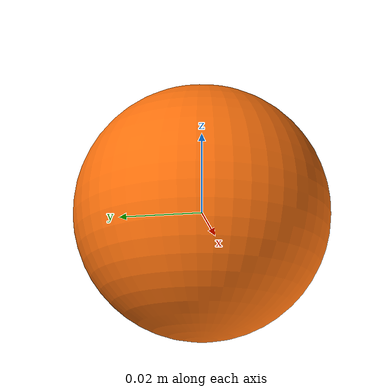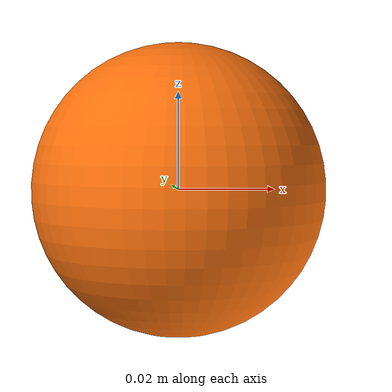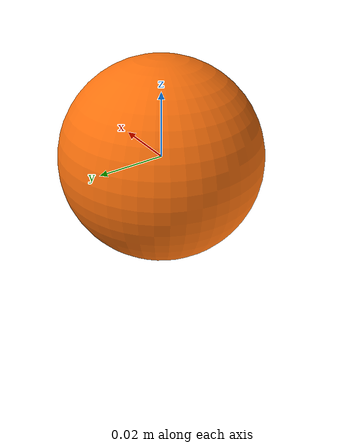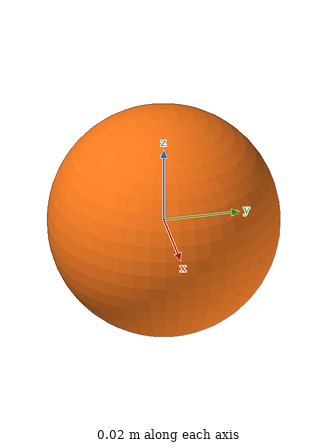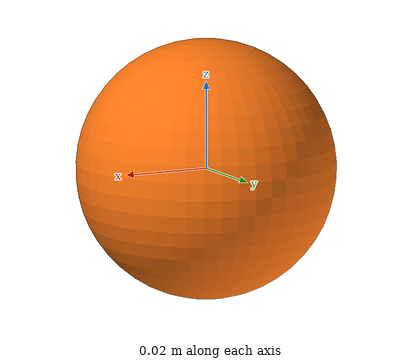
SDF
<sdf version='1.9'>
  <model name='payload_marker'>
    <link name='payload_link'>
      <inertial>
        <mass>0.001</mass>
        <inertia><ixx>0.0001</ixx><ixy>0</ixy><ixz>0</ixz><iyy>0.0001</iyy><iyz>0</iyz><izz>0.0001</izz></inertia>
      </inertial>
      <collision name='payload_collision'>
        <pose>-0.6538 1.2814 -0.8547 0 0 0</pose>
        <geometry>
          <mesh>
            <uri>model://marker/meshes/base_link.STL</uri>
            <scale>1 1 1</scale>
          </mesh>
        </geometry>
      </collision>
      <visual name='payload_visual'>
        <pose>-1.9614 3.8442 -2.5641 0 0 0</pose>
        <geometry>
          <mesh>
            <uri>model://marker/meshes/base_link.STL</uri>
            <scale>3 3 3</scale>
          </mesh>
        </geometry>
        <material>
          <ambient>1.0 0.35 0.02 1</ambient>
          <diffuse>1.0 0.45 0.05 1</diffuse>
          <specular>0.3 0.15 0.05 1</specular>
          <emissive>0.25 0.08 0.0 1</emissive>
        </material>
      </visual>
    </link>
  </model>
</sdf>
